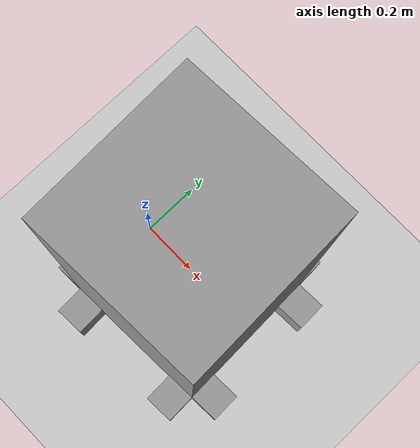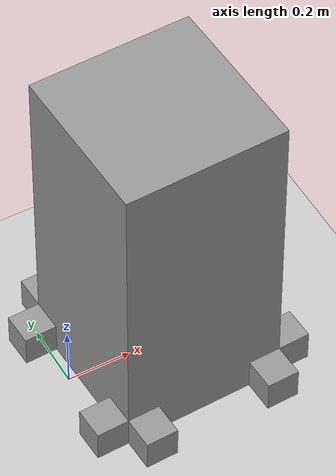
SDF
<sdf version="1.6">
 <world name="default">
  <model name="ground_plane">
   <static>1</static>
   <link name="link">
    <collision name="collision">
     <geometry><plane><normal>0 0 1</normal><size>100 100</size></plane></geometry>
     <surface><friction><ode><mu>100</mu><mu2>50</mu2></ode></friction></surface>
    </collision>
    <visual name="visual">
     <cast_shadows>0</cast_shadows>
     <geometry><plane><normal>0 0 1</normal><size>100 100</size></plane></geometry>
     <material>
      <script><uri>file://media/materials/scripts/gazebo.material</uri><name>Gazebo/Grey</name></script>
     </material>
    </visual>
   </link>
  </model>
  <model name="RSS">
   <link name="link_0">
    <inertial>
     <mass>1</mass>
     <inertia>
      <ixx>0.166667</ixx>
      <ixy>0</ixy>
      <ixz>0</ixz>
      <iyy>0.166667</iyy>
      <iyz>0</iyz>
      <izz>0.166667</izz>
     </inertia>
    </inertial>
    <pose>1e-06 -0 0.4 0 -0 0</pose>
    <self_collide>1</self_collide>
    <visual name="visual">
     <pose>0 0 0.1 0 -0 0</pose>
     <geometry><box><size>0.5 0.5 1</size></box></geometry>
     <material>
      <lighting>1</lighting>
      <script><uri>file://media/materials/scripts/gazebo.material</uri><name>Gazebo/Grey</name></script>
      <shader type="pixel"><normal_map>__default__</normal_map></shader>
      <ambient>0.3 0.3 0.3 1</ambient>
      <diffuse>0.7 0.7 0.7 1</diffuse>
      <specular>0.01 0.01 0.01 1</specular>
      <emissive>0 0 0 1</emissive>
     </material>
    </visual>
    <collision name="collision">
     <pose>0 0 0.1 0 -0 0</pose>
     <geometry><box><size>0.5 0.5 1</size></box></geometry>
     <surface>
      <friction>
       <ode><mu>0</mu><mu2>0</mu2><fdir1>0 0 0</fdir1><slip1>0</slip1><slip2>0</slip2></ode>
       <torsional>
        <coefficient>0.98</coefficient>
        <patch_radius>0</patch_radius>
        <surface_radius>0</surface_radius>
        <use_patch_radius>1</use_patch_radius>
        <ode><slip>0</slip></ode>
       </torsional>
      </friction>
      <bounce><restitution_coefficient>0</restitution_coefficient><threshold>1e+06</threshold></bounce>
      <contact>
       <collide_without_contact>0</collide_without_contact>
       <collide_without_contact_bitmask>1</collide_without_contact_bitmask>
       <collide_bitmask>1</collide_bitmask>
       <ode>
        <soft_cfm>0</soft_cfm>
        <soft_erp>0.2</soft_erp>
        <kp>1e+13</kp>
        <kd>1</kd>
        <max_vel>0.01</max_vel>
        <min_depth>0</min_depth>
       </ode>
       <bullet>
        <split_impulse>1</split_impulse>
        <split_impulse_penetration_threshold>-0.01</split_impulse_penetration_threshold>
        <soft_cfm>0</soft_cfm>
        <soft_erp>0.2</soft_erp>
        <kp>1e+13</kp>
        <kd>1</kd>
       </bullet>
      </contact>
     </surface>
    </collision>
   </link>
   <link name="link_0_0">
    <inertial>
     <mass>1</mass>
     <inertia><ixx>0.1</ixx><ixy>0</ixy><ixz>0</ixz><iyy>0.1</iyy><iyz>0</iyz><izz>0.1</izz></inertia>
    </inertial>
    <pose>-0.150008 -0.150038 0.05 -0 -1e-06 9.3e-05</pose>
    <visual name="visual">
     <geometry><sphere><radius>0.1</radius></sphere></geometry>
     <material>
      <lighting>1</lighting>
      <script><uri>file://media/materials/scripts/gazebo.material</uri><name>Gazebo/Grey</name></script>
      <shader type="pixel"><normal_map>__default__</normal_map></shader>
      <ambient>0.3 0.3 0.3 1</ambient>
      <diffuse>0.7 0.7 0.7 1</diffuse>
      <specular>0.01 0.01 0.01 1</specular>
      <emissive>0 0 0 1</emissive>
     </material>
    </visual>
    <collision name="collision">
     <geometry><sphere><radius>0.1</radius></sphere></geometry>
     <surface>
      <friction>
       <ode><mu>1</mu><mu2>1</mu2><fdir1>0 0 0</fdir1><slip1>0</slip1><slip2>0</slip2></ode>
       <torsional>
        <coefficient>1</coefficient>
        <patch_radius>0</patch_radius>
        <surface_radius>0</surface_radius>
        <use_patch_radius>1</use_patch_radius>
        <ode><slip>0</slip></ode>
       </torsional>
      </friction>
      <bounce><restitution_coefficient>0</restitution_coefficient><threshold>1e+06</threshold></bounce>
      <contact>
       <collide_without_contact>0</collide_without_contact>
       <collide_without_contact_bitmask>1</collide_without_contact_bitmask>
       <collide_bitmask>1</collide_bitmask>
       <ode>
        <soft_cfm>0</soft_cfm>
        <soft_erp>0.2</soft_erp>
        <kp>1e+13</kp>
        <kd>1</kd>
        <max_vel>0.01</max_vel>
        <min_depth>0</min_depth>
       </ode>
       <bullet>
        <split_impulse>1</split_impulse>
        <split_impulse_penetration_threshold>-0.01</split_impulse_penetration_threshold>
        <soft_cfm>0</soft_cfm>
        <soft_erp>0.2</soft_erp>
        <kp>1e+13</kp>
        <kd>1</kd>
       </bullet>
      </contact>
     </surface>
    </collision>
   </link>
   <link name="link_0_0_clone">
    <inertial>
     <mass>1</mass>
     <inertia><ixx>0.1</ixx><ixy>0</ixy><ixz>0</ixz><iyy>0.1</iyy><iyz>0</iyz><izz>0.1</izz></inertia>
    </inertial>
    <pose>-0.150027 0.15 0.05 -0 -2e-06 0.000186</pose>
    <visual name="visual_0">
     <geometry><sphere><radius>0.1</radius></sphere></geometry>
     <material>
      <lighting>1</lighting>
      <script><uri>file://media/materials/scripts/gazebo.material</uri><name>Gazebo/Grey</name></script>
      <shader type="pixel"><normal_map>__default__</normal_map></shader>
      <ambient>0.3 0.3 0.3 1</ambient>
      <diffuse>0.7 0.7 0.7 1</diffuse>
      <specular>0.01 0.01 0.01 1</specular>
      <emissive>0 0 0 1</emissive>
     </material>
    </visual>
    <collision name="collision">
     <geometry><sphere><radius>0.1</radius></sphere></geometry>
     <surface>
      <friction>
       <ode><mu>1</mu><mu2>1</mu2><fdir1>0 0 0</fdir1><slip1>0</slip1><slip2>0</slip2></ode>
       <torsional>
        <coefficient>1</coefficient>
        <patch_radius>0</patch_radius>
        <surface_radius>0</surface_radius>
        <use_patch_radius>1</use_patch_radius>
        <ode><slip>0</slip></ode>
       </torsional>
      </friction>
      <bounce><restitution_coefficient>0</restitution_coefficient><threshold>1e+06</threshold></bounce>
      <contact>
       <collide_without_contact>0</collide_without_contact>
       <collide_without_contact_bitmask>1</collide_without_contact_bitmask>
       <collide_bitmask>1</collide_bitmask>
       <ode>
        <soft_cfm>0</soft_cfm>
        <soft_erp>0.2</soft_erp>
        <kp>1e+13</kp>
        <kd>1</kd>
        <max_vel>0.01</max_vel>
        <min_depth>0</min_depth>
       </ode>
       <bullet>
        <split_impulse>1</split_impulse>
        <split_impulse_penetration_threshold>-0.01</split_impulse_penetration_threshold>
        <soft_cfm>0</soft_cfm>
        <soft_erp>0.2</soft_erp>
        <kp>1e+13</kp>
        <kd>1</kd>
       </bullet>
      </contact>
     </surface>
    </collision>
   </link>
   <link name="link_0_0_clone_0">
    <inertial>
     <mass>1</mass>
     <inertia><ixx>0.1</ixx><ixy>0</ixy><ixz>0</ixz><iyy>0.1</iyy><iyz>0</iyz><izz>0.1</izz></inertia>
    </inertial>
    <pose>0.15003 -0.15 0.05 -0 -2e-06 0.000186</pose>
    <visual name="visual_0">
     <geometry><sphere><radius>0.1</radius></sphere></geometry>
     <material>
      <lighting>1</lighting>
      <script><uri>file://media/materials/scripts/gazebo.material</uri><name>Gazebo/Grey</name></script>
      <shader type="pixel"><normal_map>__default__</normal_map></shader>
      <ambient>0.3 0.3 0.3 1</ambient>
      <diffuse>0.7 0.7 0.7 1</diffuse>
      <specular>0.01 0.01 0.01 1</specular>
      <emissive>0 0 0 1</emissive>
     </material>
    </visual>
    <collision name="collision">
     <geometry><sphere><radius>0.1</radius></sphere></geometry>
     <surface>
      <friction>
       <ode><mu>1</mu><mu2>1</mu2><fdir1>0 0 0</fdir1><slip1>0</slip1><slip2>0</slip2></ode>
       <torsional>
        <coefficient>1</coefficient>
        <patch_radius>0</patch_radius>
        <surface_radius>0</surface_radius>
        <use_patch_radius>1</use_patch_radius>
        <ode><slip>0</slip></ode>
       </torsional>
      </friction>
      <bounce><restitution_coefficient>0</restitution_coefficient><threshold>1e+06</threshold></bounce>
      <contact>
       <collide_without_contact>0</collide_without_contact>
       <collide_without_contact_bitmask>1</collide_without_contact_bitmask>
       <collide_bitmask>1</collide_bitmask>
       <ode>
        <soft_cfm>0</soft_cfm>
        <soft_erp>0.2</soft_erp>
        <kp>1e+13</kp>
        <kd>1</kd>
        <max_vel>0.01</max_vel>
        <min_depth>0</min_depth>
       </ode>
       <bullet>
        <split_impulse>1</split_impulse>
        <split_impulse_penetration_threshold>-0.01</split_impulse_penetration_threshold>
        <soft_cfm>0</soft_cfm>
        <soft_erp>0.2</soft_erp>
        <kp>1e+13</kp>
        <kd>1</kd>
       </bullet>
      </contact>
     </surface>
    </collision>
   </link>
   <link name="link_0_0_clone_1">
    <inertial>
     <mass>1</mass>
     <inertia><ixx>0.1</ixx><ixy>0</ixy><ixz>0</ixz><iyy>0.1</iyy><iyz>0</iyz><izz>0.1</izz></inertia>
    </inertial>
    <pose>0.150002 0.150028 0.05 -0 -2e-06 0.000186</pose>
    <visual name="visual_0">
     <geometry><sphere><radius>0.1</radius></sphere></geometry>
     <material>
      <lighting>1</lighting>
      <script><uri>file://media/materials/scripts/gazebo.material</uri><name>Gazebo/Grey</name></script>
      <shader type="pixel"><normal_map>__default__</normal_map></shader>
      <ambient>0.3 0.3 0.3 1</ambient>
      <diffuse>0.7 0.7 0.7 1</diffuse>
      <specular>0.01 0.01 0.01 1</specular>
      <emissive>0 0 0 1</emissive>
     </material>
    </visual>
    <collision name="collision">
     <geometry><sphere><radius>0.1</radius></sphere></geometry>
     <surface>
      <friction>
       <ode><mu>1</mu><mu2>1</mu2><fdir1>0 0 0</fdir1><slip1>0</slip1><slip2>0</slip2></ode>
       <torsional>
        <coefficient>1</coefficient>
        <patch_radius>0</patch_radius>
        <surface_radius>0</surface_radius>
        <use_patch_radius>1</use_patch_radius>
        <ode><slip>0</slip></ode>
       </torsional>
      </friction>
      <bounce><restitution_coefficient>0</restitution_coefficient><threshold>1e+06</threshold></bounce>
      <contact>
       <collide_without_contact>0</collide_without_contact>
       <collide_without_contact_bitmask>1</collide_without_contact_bitmask>
       <collide_bitmask>1</collide_bitmask>
       <ode>
        <soft_cfm>0</soft_cfm>
        <soft_erp>0.2</soft_erp>
        <kp>1e+13</kp>
        <kd>1</kd>
        <max_vel>0.01</max_vel>
        <min_depth>0</min_depth>
       </ode>
       <bullet>
        <split_impulse>1</split_impulse>
        <split_impulse_penetration_threshold>-0.01</split_impulse_penetration_threshold>
        <soft_cfm>0</soft_cfm>
        <soft_erp>0.2</soft_erp>
        <kp>1e+13</kp>
        <kd>1</kd>
       </bullet>
      </contact>
     </surface>
    </collision>
   </link>
   <link name="link_1">
    <inertial>
     <mass>1</mass>
     <inertia>
      <ixx>0.166667</ixx>
      <ixy>0</ixy>
      <ixz>0</ixz>
      <iyy>0.166667</iyy>
      <iyz>0</iyz>
      <izz>0.166667</izz>
     </inertia>
    </inertial>
    <pose>-0.199999 0.299999 -0.05 0 -0 0</pose>
    <self_collide>1</self_collide>
    <visual name="visual">
     <pose>0 0 0.1 0 -0 0</pose>
     <geometry><box><size>0.1 0.1 0.1</size></box></geometry>
     <material>
      <lighting>1</lighting>
      <script><uri>file://media/materials/scripts/gazebo.material</uri><name>Gazebo/Grey</name></script>
      <shader type="pixel"><normal_map>__default__</normal_map></shader>
      <ambient>0.3 0.3 0.3 1</ambient>
      <diffuse>0.7 0.7 0.7 1</diffuse>
      <specular>0.01 0.01 0.01 1</specular>
      <emissive>0 0 0 1</emissive>
     </material>
    </visual>
    <collision name="collision">
     <pose>0 0 0.1 0 -0 0</pose>
     <geometry><box><size>0.1 0.1 0.1</size></box></geometry>
     <surface>
      <friction>
       <ode><mu>0</mu><mu2>1</mu2><fdir1>0 0 0</fdir1><slip1>0</slip1><slip2>0</slip2></ode>
       <torsional>
        <coefficient>1</coefficient>
        <patch_radius>0</patch_radius>
        <surface_radius>0</surface_radius>
        <use_patch_radius>1</use_patch_radius>
        <ode><slip>0</slip></ode>
       </torsional>
      </friction>
      <bounce><restitution_coefficient>0</restitution_coefficient><threshold>1e+06</threshold></bounce>
      <contact>
       <collide_without_contact>0</collide_without_contact>
       <collide_without_contact_bitmask>1</collide_without_contact_bitmask>
       <collide_bitmask>1</collide_bitmask>
       <ode>
        <soft_cfm>0</soft_cfm>
        <soft_erp>0.2</soft_erp>
        <kp>1e+13</kp>
        <kd>1</kd>
        <max_vel>0.01</max_vel>
        <min_depth>0</min_depth>
       </ode>
       <bullet>
        <split_impulse>1</split_impulse>
        <split_impulse_penetration_threshold>-0.01</split_impulse_penetration_threshold>
        <soft_cfm>0</soft_cfm>
        <soft_erp>0.2</soft_erp>
        <kp>1e+13</kp>
        <kd>1</kd>
       </bullet>
      </contact>
     </surface>
    </collision>
   </link>
   <link name="link_1_clone">
    <inertial>
     <mass>1</mass>
     <inertia>
      <ixx>0.166667</ixx>
      <ixy>0</ixy>
      <ixz>0</ixz>
      <iyy>0.166667</iyy>
      <iyz>0</iyz>
      <izz>0.166667</izz>
     </inertia>
    </inertial>
    <pose>0.199999 0.3 -0.05 0 -0 0</pose>
    <self_collide>1</self_collide>
    <visual name="visual">
     <pose>0 0 0.1 0 -0 0</pose>
     <geometry><box><size>0.1 0.1 0.1</size></box></geometry>
     <material>
      <lighting>1</lighting>
      <script><uri>file://media/materials/scripts/gazebo.material</uri><name>Gazebo/Grey</name></script>
      <shader type="pixel"><normal_map>__default__</normal_map></shader>
      <ambient>0.3 0.3 0.3 1</ambient>
      <diffuse>0.7 0.7 0.7 1</diffuse>
      <specular>0.01 0.01 0.01 1</specular>
      <emissive>0 0 0 1</emissive>
     </material>
    </visual>
    <collision name="collision">
     <pose>0 0 0.1 0 -0 0</pose>
     <geometry><box><size>0.1 0.1 0.1</size></box></geometry>
     <surface>
      <friction>
       <ode><mu>0</mu><mu2>0</mu2><fdir1>0 0 0</fdir1><slip1>0</slip1><slip2>0</slip2></ode>
       <torsional>
        <coefficient>1</coefficient>
        <patch_radius>0</patch_radius>
        <surface_radius>0</surface_radius>
        <use_patch_radius>1</use_patch_radius>
        <ode><slip>0</slip></ode>
       </torsional>
      </friction>
      <bounce><restitution_coefficient>0</restitution_coefficient><threshold>1e+06</threshold></bounce>
      <contact>
       <collide_without_contact>0</collide_without_contact>
       <collide_without_contact_bitmask>1</collide_without_contact_bitmask>
       <collide_bitmask>1</collide_bitmask>
       <ode>
        <soft_cfm>0</soft_cfm>
        <soft_erp>0.2</soft_erp>
        <kp>1e+13</kp>
        <kd>1</kd>
        <max_vel>0.01</max_vel>
        <min_depth>0</min_depth>
       </ode>
       <bullet>
        <split_impulse>1</split_impulse>
        <split_impulse_penetration_threshold>-0.01</split_impulse_penetration_threshold>
        <soft_cfm>0</soft_cfm>
        <soft_erp>0.2</soft_erp>
        <kp>1e+13</kp>
        <kd>1</kd>
       </bullet>
      </contact>
     </surface>
    </collision>
   </link>
   <link name="link_1_clone_0">
    <inertial>
     <mass>1</mass>
     <inertia>
      <ixx>0.166667</ixx>
      <ixy>0</ixy>
      <ixz>0</ixz>
      <iyy>0.166667</iyy>
      <iyz>0</iyz>
      <izz>0.166667</izz>
     </inertia>
    </inertial>
    <pose>-0.299999 0.2 -0.05 0 -0 0</pose>
    <self_collide>1</self_collide>
    <visual name="visual">
     <pose>0 0 0.1 0 -0 0</pose>
     <geometry><box><size>0.1 0.1 0.1</size></box></geometry>
     <material>
      <lighting>1</lighting>
      <script><uri>file://media/materials/scripts/gazebo.material</uri><name>Gazebo/Grey</name></script>
      <shader type="pixel"><normal_map>__default__</normal_map></shader>
      <ambient>0.3 0.3 0.3 1</ambient>
      <diffuse>0.7 0.7 0.7 1</diffuse>
      <specular>0.01 0.01 0.01 1</specular>
      <emissive>0 0 0 1</emissive>
     </material>
    </visual>
    <collision name="collision">
     <pose>0 0 0.1 0 -0 0</pose>
     <geometry><box><size>0.1 0.1 0.1</size></box></geometry>
     <surface>
      <friction>
       <ode><mu>0</mu><mu2>0</mu2><fdir1>0 0 0</fdir1><slip1>0</slip1><slip2>0</slip2></ode>
       <torsional>
        <coefficient>1</coefficient>
        <patch_radius>0</patch_radius>
        <surface_radius>0</surface_radius>
        <use_patch_radius>1</use_patch_radius>
        <ode><slip>0</slip></ode>
       </torsional>
      </friction>
      <bounce><restitution_coefficient>0</restitution_coefficient><threshold>1e+06</threshold></bounce>
      <contact>
       <collide_without_contact>0</collide_without_contact>
       <collide_without_contact_bitmask>1</collide_without_contact_bitmask>
       <collide_bitmask>1</collide_bitmask>
       <ode>
        <soft_cfm>0</soft_cfm>
        <soft_erp>0.2</soft_erp>
        <kp>1e+13</kp>
        <kd>1</kd>
        <max_vel>0.01</max_vel>
        <min_depth>0</min_depth>
       </ode>
       <bullet>
        <split_impulse>1</split_impulse>
        <split_impulse_penetration_threshold>-0.01</split_impulse_penetration_threshold>
        <soft_cfm>0</soft_cfm>
        <soft_erp>0.2</soft_erp>
        <kp>1e+13</kp>
        <kd>1</kd>
       </bullet>
      </contact>
     </surface>
    </collision>
   </link>
   <link name="link_1_clone_1">
    <inertial>
     <mass>1</mass>
     <inertia>
      <ixx>0.166667</ixx>
      <ixy>0</ixy>
      <ixz>0</ixz>
      <iyy>0.166667</iyy>
      <iyz>0</iyz>
      <izz>0.166667</izz>
     </inertia>
    </inertial>
    <pose>-0.299999 -0.2 -0.05 0 -0 0</pose>
    <self_collide>1</self_collide>
    <visual name="visual">
     <pose>0 0 0.1 0 -0 0</pose>
     <geometry><box><size>0.1 0.1 0.1</size></box></geometry>
     <material>
      <lighting>1</lighting>
      <script><uri>file://media/materials/scripts/gazebo.material</uri><name>Gazebo/Grey</name></script>
      <shader type="pixel"><normal_map>__default__</normal_map></shader>
      <ambient>0.3 0.3 0.3 1</ambient>
      <diffuse>0.7 0.7 0.7 1</diffuse>
      <specular>0.01 0.01 0.01 1</specular>
      <emissive>0 0 0 1</emissive>
     </material>
    </visual>
    <collision name="collision">
     <pose>0 0 0.1 0 -0 0</pose>
     <geometry><box><size>0.1 0.1 0.1</size></box></geometry>
     <surface>
      <friction>
       <ode><mu>0</mu><mu2>0</mu2><fdir1>0 0 0</fdir1><slip1>0</slip1><slip2>0</slip2></ode>
       <torsional>
        <coefficient>1</coefficient>
        <patch_radius>0</patch_radius>
        <surface_radius>0</surface_radius>
        <use_patch_radius>1</use_patch_radius>
        <ode><slip>0</slip></ode>
       </torsional>
      </friction>
      <bounce><restitution_coefficient>0</restitution_coefficient><threshold>1e+06</threshold></bounce>
      <contact>
       <collide_without_contact>0</collide_without_contact>
       <collide_without_contact_bitmask>1</collide_without_contact_bitmask>
       <collide_bitmask>1</collide_bitmask>
       <ode>
        <soft_cfm>0</soft_cfm>
        <soft_erp>0.2</soft_erp>
        <kp>1e+13</kp>
        <kd>1</kd>
        <max_vel>0.01</max_vel>
        <min_depth>0</min_depth>
       </ode>
       <bullet>
        <split_impulse>1</split_impulse>
        <split_impulse_penetration_threshold>-0.01</split_impulse_penetration_threshold>
        <soft_cfm>0</soft_cfm>
        <soft_erp>0.2</soft_erp>
        <kp>1e+13</kp>
        <kd>1</kd>
       </bullet>
      </contact>
     </surface>
    </collision>
   </link>
   <link name="link_1_clone_2">
    <inertial>
     <mass>1</mass>
     <inertia>
      <ixx>0.166667</ixx>
      <ixy>0</ixy>
      <ixz>0</ixz>
      <iyy>0.166667</iyy>
      <iyz>0</iyz>
      <izz>0.166667</izz>
     </inertia>
    </inertial>
    <pose>0.2 -0.3 -0.05 0 -0 0</pose>
    <self_collide>1</self_collide>
    <visual name="visual">
     <pose>0 0 0.1 0 -0 0</pose>
     <geometry><box><size>0.1 0.1 0.1</size></box></geometry>
     <material>
      <lighting>1</lighting>
      <script><uri>file://media/materials/scripts/gazebo.material</uri><name>Gazebo/Grey</name></script>
      <shader type="pixel"><normal_map>__default__</normal_map></shader>
      <ambient>0.3 0.3 0.3 1</ambient>
      <diffuse>0.7 0.7 0.7 1</diffuse>
      <specular>0.01 0.01 0.01 1</specular>
      <emissive>0 0 0 1</emissive>
     </material>
    </visual>
    <collision name="collision">
     <pose>0 0 0.1 0 -0 0</pose>
     <geometry><box><size>0.1 0.1 0.1</size></box></geometry>
     <surface>
      <friction>
       <ode><mu>0</mu><mu2>0</mu2><fdir1>0 0 0</fdir1><slip1>0</slip1><slip2>0</slip2></ode>
       <torsional>
        <coefficient>1</coefficient>
        <patch_radius>0</patch_radius>
        <surface_radius>0</surface_radius>
        <use_patch_radius>1</use_patch_radius>
        <ode><slip>0</slip></ode>
       </torsional>
      </friction>
      <bounce><restitution_coefficient>0</restitution_coefficient><threshold>1e+06</threshold></bounce>
      <contact>
       <collide_without_contact>0</collide_without_contact>
       <collide_without_contact_bitmask>1</collide_without_contact_bitmask>
       <collide_bitmask>1</collide_bitmask>
       <ode>
        <soft_cfm>0</soft_cfm>
        <soft_erp>0.2</soft_erp>
        <kp>1e+13</kp>
        <kd>1</kd>
        <max_vel>0.01</max_vel>
        <min_depth>0</min_depth>
       </ode>
       <bullet>
        <split_impulse>1</split_impulse>
        <split_impulse_penetration_threshold>-0.01</split_impulse_penetration_threshold>
        <soft_cfm>0</soft_cfm>
        <soft_erp>0.2</soft_erp>
        <kp>1e+13</kp>
        <kd>1</kd>
       </bullet>
      </contact>
     </surface>
    </collision>
   </link>
   <link name="link_1_clone_3">
    <inertial>
     <mass>1</mass>
     <inertia>
      <ixx>0.166667</ixx>
      <ixy>0</ixy>
      <ixz>0</ixz>
      <iyy>0.166667</iyy>
      <iyz>0</iyz>
      <izz>0.166667</izz>
     </inertia>
    </inertial>
    <pose>-0.2 -0.3 -0.05 0 -0 0</pose>
    <self_collide>1</self_collide>
    <visual name="visual">
     <pose>0 0 0.1 0 -0 0</pose>
     <geometry><box><size>0.1 0.1 0.1</size></box></geometry>
     <material>
      <lighting>1</lighting>
      <script><uri>file://media/materials/scripts/gazebo.material</uri><name>Gazebo/Grey</name></script>
      <shader type="pixel"><normal_map>__default__</normal_map></shader>
      <ambient>0.3 0.3 0.3 1</ambient>
      <diffuse>0.7 0.7 0.7 1</diffuse>
      <specular>0.01 0.01 0.01 1</specular>
      <emissive>0 0 0 1</emissive>
     </material>
    </visual>
    <collision name="collision">
     <pose>0 0 0.1 0 -0 0</pose>
     <geometry><box><size>0.1 0.1 0.1</size></box></geometry>
     <surface>
      <friction>
       <ode><mu>0</mu><mu2>0</mu2><fdir1>0 0 0</fdir1><slip1>0</slip1><slip2>0</slip2></ode>
       <torsional>
        <coefficient>1</coefficient>
        <patch_radius>0</patch_radius>
        <surface_radius>0</surface_radius>
        <use_patch_radius>1</use_patch_radius>
        <ode><slip>0</slip></ode>
       </torsional>
      </friction>
      <bounce><restitution_coefficient>0</restitution_coefficient><threshold>1e+06</threshold></bounce>
      <contact>
       <collide_without_contact>0</collide_without_contact>
       <collide_without_contact_bitmask>1</collide_without_contact_bitmask>
       <collide_bitmask>1</collide_bitmask>
       <ode>
        <soft_cfm>0</soft_cfm>
        <soft_erp>0.2</soft_erp>
        <kp>1e+13</kp>
        <kd>1</kd>
        <max_vel>0.01</max_vel>
        <min_depth>0</min_depth>
       </ode>
       <bullet>
        <split_impulse>1</split_impulse>
        <split_impulse_penetration_threshold>-0.01</split_impulse_penetration_threshold>
        <soft_cfm>0</soft_cfm>
        <soft_erp>0.2</soft_erp>
        <kp>1e+13</kp>
        <kd>1</kd>
       </bullet>
      </contact>
     </surface>
    </collision>
   </link>
   <link name="link_1_clone_4">
    <inertial>
     <mass>1</mass>
     <inertia>
      <ixx>0.166667</ixx>
      <ixy>0</ixy>
      <ixz>0</ixz>
      <iyy>0.166667</iyy>
      <iyz>0</iyz>
      <izz>0.166667</izz>
     </inertia>
    </inertial>
    <pose>0.3 -0.200001 -0.05 0 -0 0</pose>
    <self_collide>1</self_collide>
    <visual name="visual">
     <pose>0 0 0.1 0 -0 0</pose>
     <geometry><box><size>0.1 0.1 0.1</size></box></geometry>
     <material>
      <lighting>1</lighting>
      <script><uri>file://media/materials/scripts/gazebo.material</uri><name>Gazebo/Grey</name></script>
      <shader type="pixel"><normal_map>__default__</normal_map></shader>
      <ambient>0.3 0.3 0.3 1</ambient>
      <diffuse>0.7 0.7 0.7 1</diffuse>
      <specular>0.01 0.01 0.01 1</specular>
      <emissive>0 0 0 1</emissive>
     </material>
    </visual>
    <collision name="collision">
     <pose>0 0 0.1 0 -0 0</pose>
     <geometry><box><size>0.1 0.1 0.1</size></box></geometry>
     <surface>
      <friction>
       <ode><mu>0</mu><mu2>0</mu2><fdir1>0 0 0</fdir1><slip1>0</slip1><slip2>0</slip2></ode>
       <torsional>
        <coefficient>1</coefficient>
        <patch_radius>0</patch_radius>
        <surface_radius>0</surface_radius>
        <use_patch_radius>1</use_patch_radius>
        <ode><slip>0</slip></ode>
       </torsional>
      </friction>
      <bounce><restitution_coefficient>0</restitution_coefficient><threshold>1e+06</threshold></bounce>
      <contact>
       <collide_without_contact>0</collide_without_contact>
       <collide_without_contact_bitmask>1</collide_without_contact_bitmask>
       <collide_bitmask>1</collide_bitmask>
       <ode>
        <soft_cfm>0</soft_cfm>
        <soft_erp>0.2</soft_erp>
        <kp>1e+13</kp>
        <kd>1</kd>
        <max_vel>0.01</max_vel>
        <min_depth>0</min_depth>
       </ode>
       <bullet>
        <split_impulse>1</split_impulse>
        <split_impulse_penetration_threshold>-0.01</split_impulse_penetration_threshold>
        <soft_cfm>0</soft_cfm>
        <soft_erp>0.2</soft_erp>
        <kp>1e+13</kp>
        <kd>1</kd>
       </bullet>
      </contact>
     </surface>
    </collision>
   </link>
   <link name="link_1_clone_5">
    <inertial>
     <mass>1</mass>
     <inertia>
      <ixx>0.166667</ixx>
      <ixy>0</ixy>
      <ixz>0</ixz>
      <iyy>0.166667</iyy>
      <iyz>0</iyz>
      <izz>0.166667</izz>
     </inertia>
    </inertial>
    <pose>0.3 0.199999 -0.05 0 -0 0</pose>
    <self_collide>1</self_collide>
    <visual name="visual">
     <pose>0 0 0.1 0 -0 0</pose>
     <geometry><box><size>0.1 0.1 0.1</size></box></geometry>
     <material>
      <lighting>1</lighting>
      <script><uri>file://media/materials/scripts/gazebo.material</uri><name>Gazebo/Grey</name></script>
      <shader type="pixel"><normal_map>__default__</normal_map></shader>
      <ambient>0.3 0.3 0.3 1</ambient>
      <diffuse>0.7 0.7 0.7 1</diffuse>
      <specular>0.01 0.01 0.01 1</specular>
      <emissive>0 0 0 1</emissive>
     </material>
    </visual>
    <collision name="collision">
     <pose>0 0 0.1 0 -0 0</pose>
     <geometry><box><size>0.1 0.1 0.1</size></box></geometry>
     <surface>
      <friction>
       <ode><mu>0</mu><mu2>0</mu2><fdir1>0 0 0</fdir1><slip1>0</slip1><slip2>0</slip2></ode>
       <torsional>
        <coefficient>1</coefficient>
        <patch_radius>0</patch_radius>
        <surface_radius>0</surface_radius>
        <use_patch_radius>1</use_patch_radius>
        <ode><slip>0</slip></ode>
       </torsional>
      </friction>
      <bounce><restitution_coefficient>0</restitution_coefficient><threshold>1e+06</threshold></bounce>
      <contact>
       <collide_without_contact>0</collide_without_contact>
       <collide_without_contact_bitmask>1</collide_without_contact_bitmask>
       <collide_bitmask>1</collide_bitmask>
       <ode>
        <soft_cfm>0</soft_cfm>
        <soft_erp>0.2</soft_erp>
        <kp>1e+13</kp>
        <kd>1</kd>
        <max_vel>0.01</max_vel>
        <min_depth>0</min_depth>
       </ode>
       <bullet>
        <split_impulse>1</split_impulse>
        <split_impulse_penetration_threshold>-0.01</split_impulse_penetration_threshold>
        <soft_cfm>0</soft_cfm>
        <soft_erp>0.2</soft_erp>
        <kp>1e+13</kp>
        <kd>1</kd>
       </bullet>
      </contact>
     </surface>
    </collision>
   </link>
   <joint name="link_0_JOINT_0_0" type="revolute">
    <parent>link_0</parent>
    <child>link_0_0</child>
    <axis>
     <xyz>1 0 0</xyz>
     <use_parent_model_frame>0</use_parent_model_frame>
     <limit>
      <lower>-1.79769e+308</lower>
      <upper>1.79769e+308</upper>
      <effort>-1</effort>
      <velocity>-1</velocity>
     </limit>
     <dynamics>
      <spring_reference>0</spring_reference>
      <spring_stiffness>0</spring_stiffness>
      <damping>0</damping>
      <friction>0</friction>
     </dynamics>
    </axis>
    <physics>
     <ode><limit><cfm>0</cfm><erp>0.2</erp></limit><suspension><cfm>0</cfm><erp>0.2</erp></suspension></ode>
    </physics>
   </joint>
   <joint name="link_0_JOINT_0" type="fixed">
    <parent>link_0</parent>
    <child>link_1</child>
    <physics>
     <ode><limit><cfm>0</cfm><erp>0.2</erp></limit><suspension><cfm>0</cfm><erp>0.2</erp></suspension></ode>
    </physics>
   </joint>
   <joint name="link_0_JOINT_1_0" type="revolute">
    <parent>link_0</parent>
    <child>link_0_0_clone</child>
    <axis>
     <xyz>1 0 0</xyz>
     <use_parent_model_frame>0</use_parent_model_frame>
     <limit>
      <lower>-1.79769e+308</lower>
      <upper>1.79769e+308</upper>
      <effort>-1</effort>
      <velocity>-1</velocity>
     </limit>
     <dynamics>
      <spring_reference>0</spring_reference>
      <spring_stiffness>0</spring_stiffness>
      <damping>0</damping>
      <friction>0</friction>
     </dynamics>
    </axis>
    <physics>
     <ode><limit><cfm>0</cfm><erp>0.2</erp></limit><suspension><cfm>0</cfm><erp>0.2</erp></suspension></ode>
    </physics>
   </joint>
   <joint name="link_0_JOINT_1" type="fixed">
    <parent>link_0</parent>
    <child>link_1_clone</child>
    <physics>
     <ode><limit><cfm>0</cfm><erp>0.2</erp></limit><suspension><cfm>0</cfm><erp>0.2</erp></suspension></ode>
    </physics>
   </joint>
   <joint name="link_0_JOINT_2_0" type="revolute">
    <parent>link_0</parent>
    <child>link_0_0_clone_0</child>
    <axis>
     <xyz>1 0 0</xyz>
     <use_parent_model_frame>0</use_parent_model_frame>
     <limit>
      <lower>-1.79769e+308</lower>
      <upper>1.79769e+308</upper>
      <effort>-1</effort>
      <velocity>-1</velocity>
     </limit>
     <dynamics>
      <spring_reference>0</spring_reference>
      <spring_stiffness>0</spring_stiffness>
      <damping>0</damping>
      <friction>0</friction>
     </dynamics>
    </axis>
    <physics>
     <ode><limit><cfm>0</cfm><erp>0.2</erp></limit><suspension><cfm>0</cfm><erp>0.2</erp></suspension></ode>
    </physics>
   </joint>
   <joint name="link_0_JOINT_2" type="fixed">
    <parent>link_0</parent>
    <child>link_1_clone_0</child>
    <physics>
     <ode><limit><cfm>0</cfm><erp>0.2</erp></limit><suspension><cfm>0</cfm><erp>0.2</erp></suspension></ode>
    </physics>
   </joint>
   <joint name="link_0_JOINT_3_0" type="revolute">
    <parent>link_0</parent>
    <child>link_0_0_clone_1</child>
    <axis>
     <xyz>1 0 0</xyz>
     <use_parent_model_frame>0</use_parent_model_frame>
     <limit>
      <lower>-1.79769e+308</lower>
      <upper>1.79769e+308</upper>
      <effort>-1</effort>
      <velocity>-1</velocity>
     </limit>
     <dynamics>
      <spring_reference>0</spring_reference>
      <spring_stiffness>0</spring_stiffness>
      <damping>0</damping>
      <friction>0</friction>
     </dynamics>
    </axis>
    <physics>
     <ode><limit><cfm>0</cfm><erp>0.2</erp></limit><suspension><cfm>0</cfm><erp>0.2</erp></suspension></ode>
    </physics>
   </joint>
   <joint name="link_0_JOINT_3" type="fixed">
    <parent>link_0</parent>
    <child>link_1_clone_1</child>
    <physics>
     <ode><limit><cfm>0</cfm><erp>0.2</erp></limit><suspension><cfm>0</cfm><erp>0.2</erp></suspension></ode>
    </physics>
   </joint>
   <joint name="link_0_JOINT_4" type="fixed">
    <parent>link_0</parent>
    <child>link_1_clone_2</child>
    <physics>
     <ode><limit><cfm>0</cfm><erp>0.2</erp></limit><suspension><cfm>0</cfm><erp>0.2</erp></suspension></ode>
    </physics>
   </joint>
   <joint name="link_0_JOINT_5" type="fixed">
    <parent>link_0</parent>
    <child>link_1_clone_3</child>
    <physics>
     <ode><limit><cfm>0</cfm><erp>0.2</erp></limit><suspension><cfm>0</cfm><erp>0.2</erp></suspension></ode>
    </physics>
   </joint>
   <joint name="link_0_JOINT_6" type="fixed">
    <parent>link_0</parent>
    <child>link_1_clone_4</child>
    <physics>
     <ode><limit><cfm>0</cfm><erp>0.2</erp></limit><suspension><cfm>0</cfm><erp>0.2</erp></suspension></ode>
    </physics>
   </joint>
   <joint name="link_0_JOINT_7" type="fixed">
    <parent>link_0</parent>
    <child>link_1_clone_5</child>
    <physics>
     <ode><limit><cfm>0</cfm><erp>0.2</erp></limit><suspension><cfm>0</cfm><erp>0.2</erp></suspension></ode>
    </physics>
   </joint>
   <static>0</static>
   <plugin name="imu_plugin" filename="libimu_plugin.so"/>
   <plugin name="model_push" filename="libmodel_push.so"/>
   <pose>0.261231 -0.059569 0.050002 1.5e-05 -1.1e-05 -1.52986</pose>
  </model>
 </world>
</sdf>
